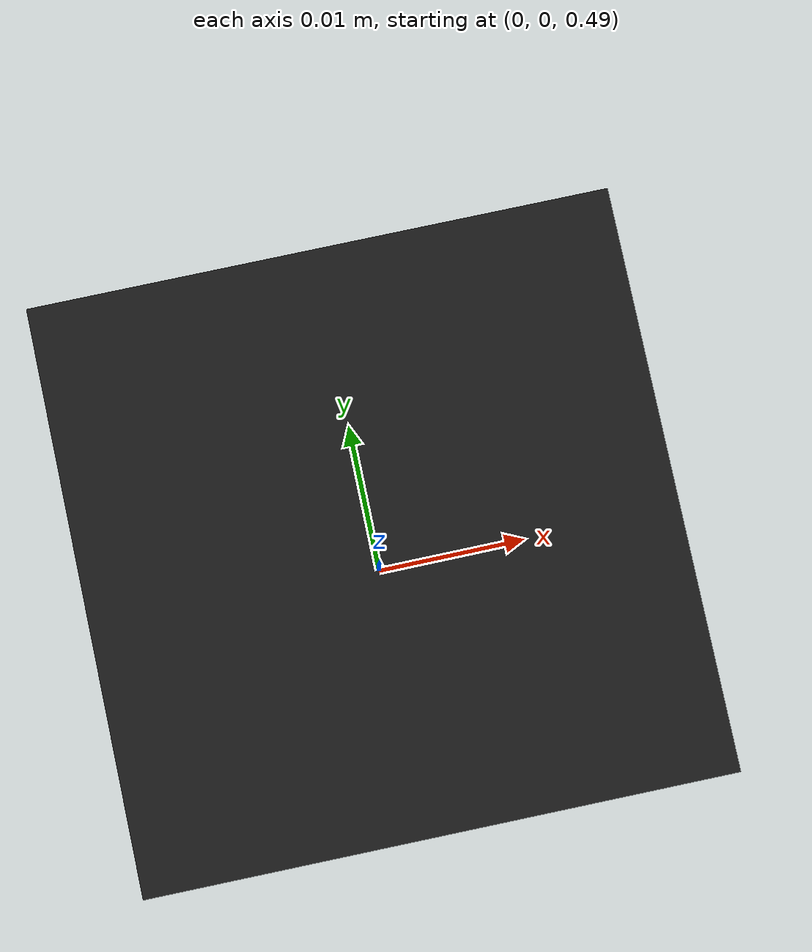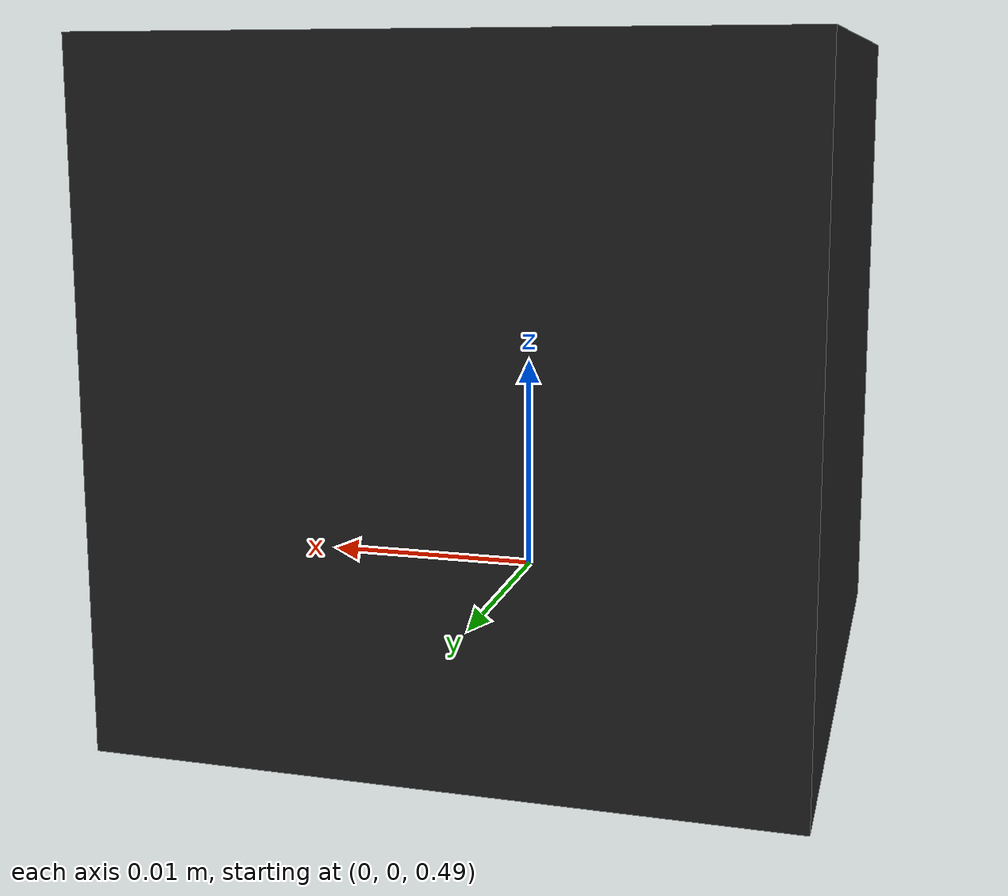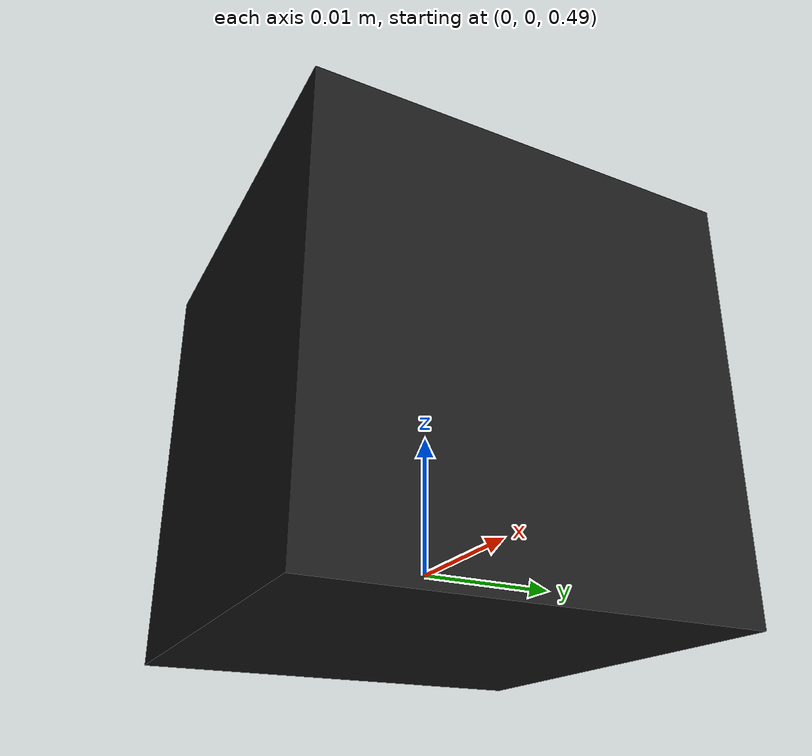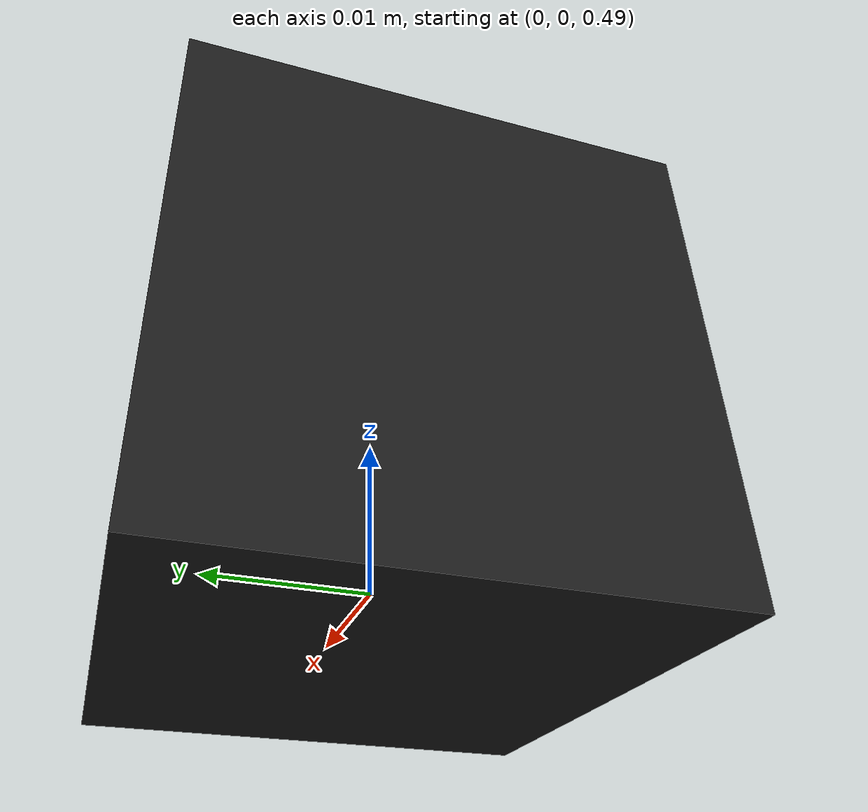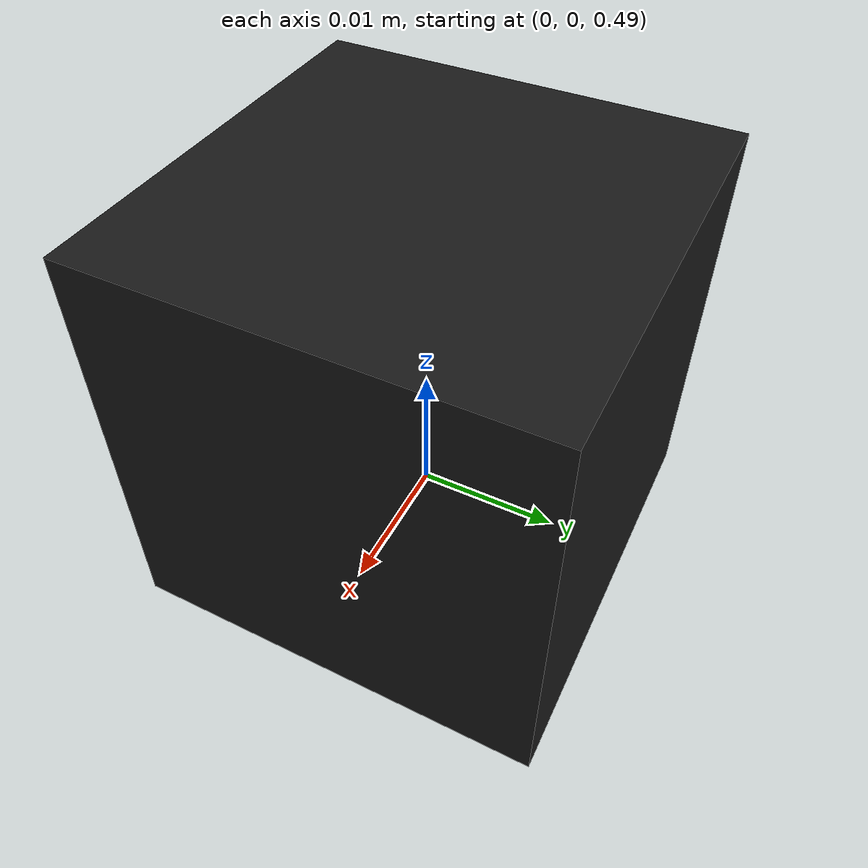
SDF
<?xml version='1.0'?>
<sdf version="1.4">
  <model name="my_model">
    <pose>0 0 0.5 0 0 0</pose>
    <link name="link">
      <inertial>
        <mass>0.1</mass>
        <inertia>
          <ixx>0.083</ixx>
          <ixy>0.0</ixy>
          <ixz>0.0</ixz>
          <iyy>0.083</iyy>
          <iyz>0.0</iyz>
          <izz>0.083</izz>
        </inertia>
      </inertial>
      <collision name="collision">
        <geometry>
          <box>
            <size>0.03 0.03 0.03</size>
          </box>
        </geometry>
      </collision>
      <visual name="visual">
        <geometry>
          <box>
            <size>0.03 0.03 0.03</size>
          </box>
        </geometry>
        <material>
          <diffuse>0.1 0.1 0.1 1</diffuse>
          <specular>0.4 0.4 0.4 1</specular>
        </material>
      </visual>
    </link>
  </model>
</sdf>
